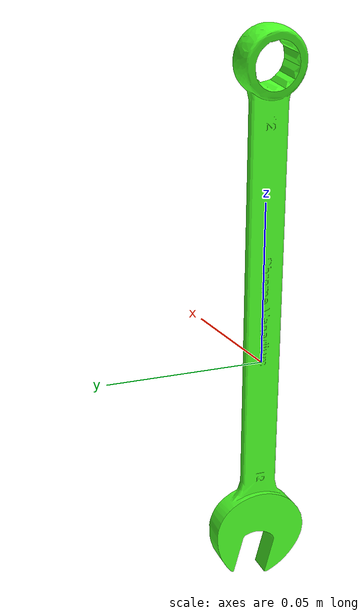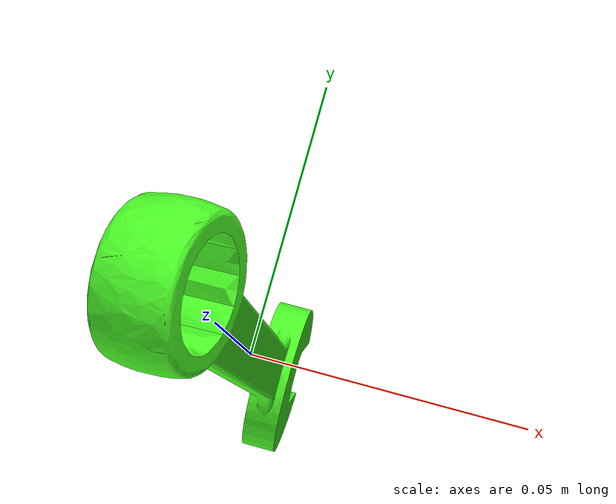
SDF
<?xml version="1.0"?>
<sdf version="1.7">
  <model name="combination_wrench_12mm_bright">
    <pose>0 0 0 0 0 0</pose>
    <static>false</static>
    <link name="link">
      <!-- link frame = tool CoM; Z = long axis (+ toward tool end), X = forward, Y = Z x X -->
      <inertial>
        <pose>0 0 0 0 0 0</pose>
        <mass>0.084896</mass>
        <inertia>
          <ixx>2.794388e-04</ixx>
          <ixy>-8.696929e-21</ixy>
          <ixz>3.862409e-24</ixz>
          <iyy>2.763539e-04</iyy>
          <iyz>-9.492530e-22</iyz>
          <izz>3.669617e-06</izz>
        </inertia>
      </inertial>
      <collision name="collision">
        <geometry>
          <mesh>
            <uri>model://combination_wrench_12mm/meshes/combination_wrench_12mm.dae</uri>
          </mesh>
        </geometry>
      </collision>
      <visual name="visual">
        <geometry>
          <mesh>
            <uri>model://combination_wrench_12mm/meshes/combination_wrench_12mm.dae</uri>
          </mesh>
        </geometry>
        <material>
          <ambient>0.133 0.450 0.068 1.0</ambient>
          <diffuse>0.294 1.000 0.150 1.0</diffuse>
          <specular>0.85 0.85 0.85 1.0</specular>
          <emissive>0 0 0 1.0</emissive>
        </material>
      </visual>
    </link>
  </model>
</sdf>
